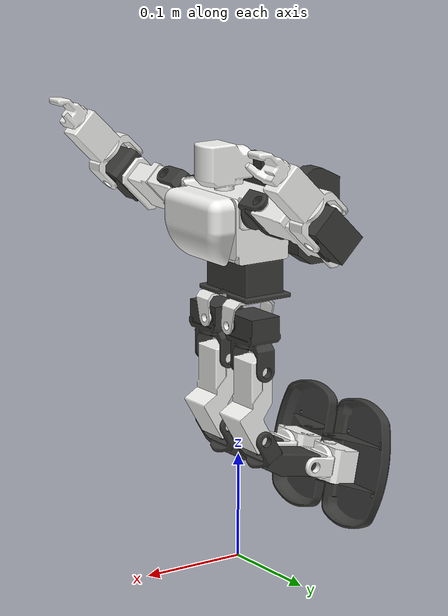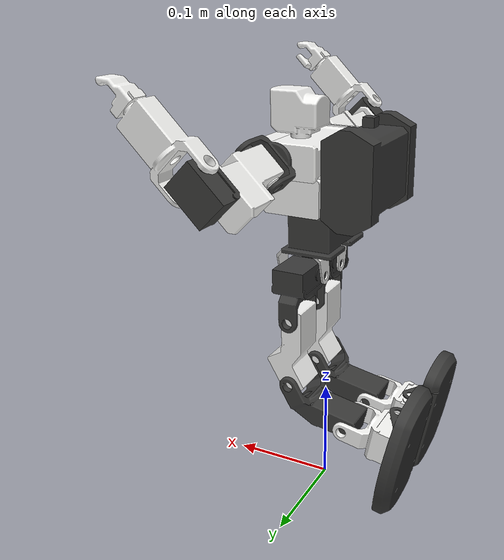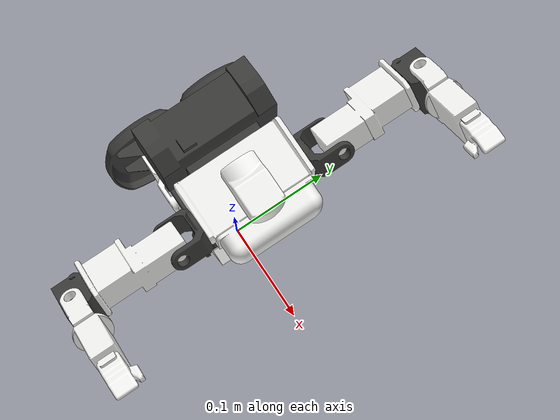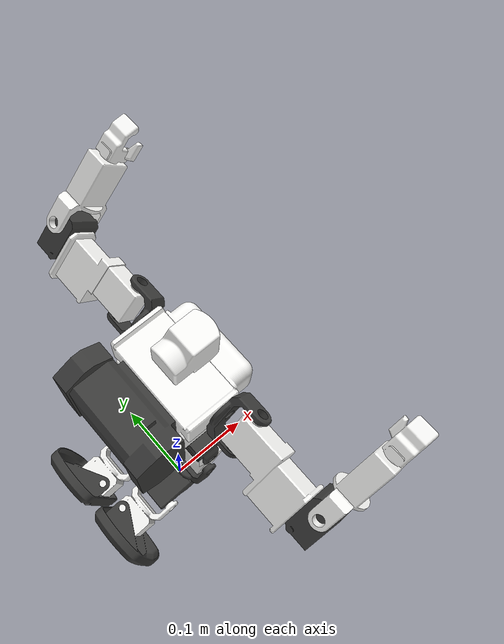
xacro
<?xml version="1.0" ?>
<robot name="KHR3_001" xmlns:xacro="http://www.ros.org/wiki/xacro">

<xacro:include filename="$(find KHR3_001_description)/urdf/materials.xacro" />
<link name="base_link">
  <inertial>
    <origin xyz="-0.0004860989233068227 0.009532810756286876 0.27413898086600197" rpy="0 0 0"/>
    <mass value="0.1340821317466695"/>
    <inertia ixx="6.3e-05" iyy="3.6e-05" izz="6.8e-05" ixy="0.0" iyz="-0.0" ixz="-0.0"/>
  </inertial>
  <visual>
    <origin xyz="0.0 0.0 0.0" rpy="0 0 0"/>
    <geometry>
      <mesh filename="package://KHR3_001_description/meshes/base_link.stl" scale="0.001 0.001 0.001"/>
    </geometry>
    <material name="material_base_link"/>
  </visual>
  <collision>
    <origin xyz="0.0 0.0 0.0" rpy="0 0 0"/>
    <geometry>
      <mesh filename="package://KHR3_001_description/meshes/base_link.stl" scale="0.001 0.001 0.001"/>
    </geometry>
  </collision>
</link>

<link name="c_chest_c_1">
  <inertial>
    <origin xyz="-9.075647373437204e-05 -4.299695896721467e-08 0.04371354326547933" rpy="0 0 0"/>
    <mass value="0.1751250442918047"/>
    <inertia ixx="0.000158" iyy="6.6e-05" izz="0.000176" ixy="0.0" iyz="-0.0" ixz="0.0"/>
  </inertial>
  <visual>
    <origin xyz="-0.010956 -0.009542 -0.29475" rpy="0 0 0"/>
    <geometry>
      <mesh filename="package://KHR3_001_description/meshes/c_chest_c_1.stl" scale="0.001 0.001 0.001"/>
    </geometry>
    <material name="material_c_chest_c_1"/>
  </visual>
  <collision>
    <origin xyz="-0.010956 -0.009542 -0.29475" rpy="0 0 0"/>
    <geometry>
      <mesh filename="package://KHR3_001_description/meshes/c_chest_c_1.stl" scale="0.001 0.001 0.001"/>
    </geometry>
  </collision>
</link>

<link name="c_chest_b_1">
  <inertial>
    <origin xyz="-0.02736256237252084 2.8405186139127125e-06 0.004477857770456339" rpy="0 0 0"/>
    <mass value="0.08659748664099912"/>
    <inertia ixx="0.000118" iyy="5.2e-05" izz="9.8e-05" ixy="0.0" iyz="0.0" ixz="0.0"/>
  </inertial>
  <visual>
    <origin xyz="0.015044 -0.009542 -0.326" rpy="0 0 0"/>
    <geometry>
      <mesh filename="package://KHR3_001_description/meshes/c_chest_b_1.stl" scale="0.001 0.001 0.001"/>
    </geometry>
    <material name="material_c_chest_b_1"/>
  </visual>
  <collision>
    <origin xyz="0.015044 -0.009542 -0.326" rpy="0 0 0"/>
    <geometry>
      <mesh filename="package://KHR3_001_description/meshes/c_chest_b_1.stl" scale="0.001 0.001 0.001"/>
    </geometry>
  </collision>
</link>

<link name="c_chest_a_1">
  <inertial>
    <origin xyz="0.004546802047891985 -4.3088009722691556e-08 -0.002478844882515263" rpy="0 0 0"/>
    <mass value="0.033763923840640864"/>
    <inertia ixx="3.4e-05" iyy="1.9e-05" izz="3.6e-05" ixy="0.0" iyz="-0.0" ixz="-3e-06"/>
  </inertial>
  <visual>
    <origin xyz="-0.036956 -0.009542 -0.326" rpy="0 0 0"/>
    <geometry>
      <mesh filename="package://KHR3_001_description/meshes/c_chest_a_1.stl" scale="0.001 0.001 0.001"/>
    </geometry>
    <material name="material_c_chest_a_1"/>
  </visual>
  <collision>
    <origin xyz="-0.036956 -0.009542 -0.326" rpy="0 0 0"/>
    <geometry>
      <mesh filename="package://KHR3_001_description/meshes/c_chest_a_1.stl" scale="0.001 0.001 0.001"/>
    </geometry>
  </collision>
</link>

<link name="c_head_a_1">
  <inertial>
    <origin xyz="0.0030794307766838433 -4.398312582372388e-08 0.022888843043797014" rpy="0 0 0"/>
    <mass value="0.012778861662402219"/>
    <inertia ixx="2e-06" iyy="4e-06" izz="3e-06" ixy="-0.0" iyz="-0.0" ixz="-0.0"/>
  </inertial>
  <visual>
    <origin xyz="-0.022456 -0.009542 -0.35425" rpy="0 0 0"/>
    <geometry>
      <mesh filename="package://KHR3_001_description/meshes/c_head_a_1.stl" scale="0.001 0.001 0.001"/>
    </geometry>
    <material name="material_c_head_a_1"/>
  </visual>
  <collision>
    <origin xyz="-0.022456 -0.009542 -0.35425" rpy="0 0 0"/>
    <geometry>
      <mesh filename="package://KHR3_001_description/meshes/c_head_a_1.stl" scale="0.001 0.001 0.001"/>
    </geometry>
  </collision>
</link>

<link name="l_shoulder_1">
  <inertial>
    <origin xyz="0.0001694037375137153 0.008747288709026475 3.275157922644212e-14" rpy="0 0 0"/>
    <mass value="0.01212036782921271"/>
    <inertia ixx="1e-06" iyy="4e-06" izz="4e-06" ixy="-0.0" iyz="0.0" ixz="0.0"/>
  </inertial>
  <visual>
    <origin xyz="-0.022456 -0.058442 -0.3425" rpy="0 0 0"/>
    <geometry>
      <mesh filename="package://KHR3_001_description/meshes/l_shoulder_1.stl" scale="0.001 0.001 0.001"/>
    </geometry>
    <material name="material_l_shoulder_1"/>
  </visual>
  <collision>
    <origin xyz="-0.022456 -0.058442 -0.3425" rpy="0 0 0"/>
    <geometry>
      <mesh filename="package://KHR3_001_description/meshes/l_shoulder_1.stl" scale="0.001 0.001 0.001"/>
    </geometry>
  </collision>
</link>

<link name="l_upperarm_1">
  <inertial>
    <origin xyz="-0.0225653184925299 -4.2996961130414846e-08 -0.035645845152499855" rpy="0 0 0"/>
    <mass value="0.09077338253436834"/>
    <inertia ixx="5.4e-05" iyy="6.4e-05" izz="1.8e-05" ixy="0.0" iyz="0.0" ixz="-1e-05"/>
  </inertial>
  <visual>
    <origin xyz="-0.038206 -0.083442 -0.3425" rpy="0 0 0"/>
    <geometry>
      <mesh filename="package://KHR3_001_description/meshes/l_upperarm_1.stl" scale="0.001 0.001 0.001"/>
    </geometry>
    <material name="material_l_upperarm_1"/>
  </visual>
  <collision>
    <origin xyz="-0.038206 -0.083442 -0.3425" rpy="0 0 0"/>
    <geometry>
      <mesh filename="package://KHR3_001_description/meshes/l_upperarm_1.stl" scale="0.001 0.001 0.001"/>
    </geometry>
  </collision>
</link>

<link name="l_elbow_1">
  <inertial>
    <origin xyz="5.745484732988526e-05 -4.299695875731313e-08 -0.012574921301198416" rpy="0 0 0"/>
    <mass value="0.044771268874731554"/>
    <inertia ixx="6e-06" iyy="8e-06" izz="1e-05" ixy="0.0" iyz="-0.0" ixz="0.0"/>
  </inertial>
  <visual>
    <origin xyz="-0.022206 -0.083442 -0.27075" rpy="0 0 0"/>
    <geometry>
      <mesh filename="package://KHR3_001_description/meshes/l_elbow_1.stl" scale="0.001 0.001 0.001"/>
    </geometry>
    <material name="material_l_elbow_1"/>
  </visual>
  <collision>
    <origin xyz="-0.022206 -0.083442 -0.27075" rpy="0 0 0"/>
    <geometry>
      <mesh filename="package://KHR3_001_description/meshes/l_elbow_1.stl" scale="0.001 0.001 0.001"/>
    </geometry>
  </collision>
</link>

<link name="l_lowerarm_1">
  <inertial>
    <origin xyz="0.00017641885408353764 -0.015692428343568668 -0.0456965391176124" rpy="0 0 0"/>
    <mass value="0.029838058097775663"/>
    <inertia ixx="1.8e-05" iyy="1.6e-05" izz="4e-06" ixy="0.0" iyz="-0.0" ixz="0.0"/>
  </inertial>
  <visual>
    <origin xyz="-0.033706 -0.099692 -0.25625" rpy="0 0 0"/>
    <geometry>
      <mesh filename="package://KHR3_001_description/meshes/l_lowerarm_1.stl" scale="0.001 0.001 0.001"/>
    </geometry>
    <material name="material_l_lowerarm_1"/>
  </visual>
  <collision>
    <origin xyz="-0.033706 -0.099692 -0.25625" rpy="0 0 0"/>
    <geometry>
      <mesh filename="package://KHR3_001_description/meshes/l_lowerarm_1.stl" scale="0.001 0.001 0.001"/>
    </geometry>
  </collision>
</link>

<link name="r_shoulder_1">
  <inertial>
    <origin xyz="0.00016940373733527817 -0.00874737470294372 5.2458037913538647e-14" rpy="0 0 0"/>
    <mass value="0.012120367829212731"/>
    <inertia ixx="1e-06" iyy="4e-06" izz="4e-06" ixy="0.0" iyz="0.0" ixz="-0.0"/>
  </inertial>
  <visual>
    <origin xyz="-0.022456 0.039358 -0.3425" rpy="0 0 0"/>
    <geometry>
      <mesh filename="package://KHR3_001_description/meshes/r_shoulder_1.stl" scale="0.001 0.001 0.001"/>
    </geometry>
    <material name="material_r_shoulder_1"/>
  </visual>
  <collision>
    <origin xyz="-0.022456 0.039358 -0.3425" rpy="0 0 0"/>
    <geometry>
      <mesh filename="package://KHR3_001_description/meshes/r_shoulder_1.stl" scale="0.001 0.001 0.001"/>
    </geometry>
  </collision>
</link>

<link name="r_upperarm_1">
  <inertial>
    <origin xyz="-0.022565318492529674 -4.299696106102591e-08 -0.035645845152499855" rpy="0 0 0"/>
    <mass value="0.09077338253436834"/>
    <inertia ixx="5.4e-05" iyy="6.4e-05" izz="1.8e-05" ixy="0.0" iyz="0.0" ixz="-1e-05"/>
  </inertial>
  <visual>
    <origin xyz="-0.038206 0.064358 -0.3425" rpy="0 0 0"/>
    <geometry>
      <mesh filename="package://KHR3_001_description/meshes/r_upperarm_1.stl" scale="0.001 0.001 0.001"/>
    </geometry>
    <material name="material_r_upperarm_1"/>
  </visual>
  <collision>
    <origin xyz="-0.038206 0.064358 -0.3425" rpy="0 0 0"/>
    <geometry>
      <mesh filename="package://KHR3_001_description/meshes/r_upperarm_1.stl" scale="0.001 0.001 0.001"/>
    </geometry>
  </collision>
</link>

<link name="r_elbow_1">
  <inertial>
    <origin xyz="5.7454847330107306e-05 -4.299695864629083e-08 -0.012574921301198416" rpy="0 0 0"/>
    <mass value="0.044771268874731526"/>
    <inertia ixx="6e-06" iyy="8e-06" izz="1e-05" ixy="0.0" iyz="0.0" ixz="0.0"/>
  </inertial>
  <visual>
    <origin xyz="-0.022206 0.064358 -0.27075" rpy="0 0 0"/>
    <geometry>
      <mesh filename="package://KHR3_001_description/meshes/r_elbow_1.stl" scale="0.001 0.001 0.001"/>
    </geometry>
    <material name="material_r_elbow_1"/>
  </visual>
  <collision>
    <origin xyz="-0.022206 0.064358 -0.27075" rpy="0 0 0"/>
    <geometry>
      <mesh filename="package://KHR3_001_description/meshes/r_elbow_1.stl" scale="0.001 0.001 0.001"/>
    </geometry>
  </collision>
</link>

<link name="r_lowerarm_1">
  <inertial>
    <origin xyz="0.00017641885409563907 0.015692342349686986 -0.04569653911759183" rpy="0 0 0"/>
    <mass value="0.029838058097763544"/>
    <inertia ixx="1.8e-05" iyy="1.6e-05" izz="4e-06" ixy="-0.0" iyz="0.0" ixz="0.0"/>
  </inertial>
  <visual>
    <origin xyz="-0.033706 0.080608 -0.25625" rpy="0 0 0"/>
    <geometry>
      <mesh filename="package://KHR3_001_description/meshes/r_lowerarm_1.stl" scale="0.001 0.001 0.001"/>
    </geometry>
    <material name="material_r_lowerarm_1"/>
  </visual>
  <collision>
    <origin xyz="-0.033706 0.080608 -0.25625" rpy="0 0 0"/>
    <geometry>
      <mesh filename="package://KHR3_001_description/meshes/r_lowerarm_1.stl" scale="0.001 0.001 0.001"/>
    </geometry>
  </collision>
</link>

<link name="l_hipjointupper_1">
  <inertial>
    <origin xyz="3.2937645154926254e-05 -0.0011113374509284478 -0.00740019979397627" rpy="0 0 0"/>
    <mass value="0.005702042499396518"/>
    <inertia ixx="1e-06" iyy="2e-06" izz="2e-06" ixy="0.0" iyz="-0.0" ixz="0.0"/>
  </inertial>
  <visual>
    <origin xyz="-0.010956 -0.031242 -0.25575" rpy="0 0 0"/>
    <geometry>
      <mesh filename="package://KHR3_001_description/meshes/l_hipjointupper_1.stl" scale="0.001 0.001 0.001"/>
    </geometry>
    <material name="material_l_hipjointupper_1"/>
  </visual>
  <collision>
    <origin xyz="-0.010956 -0.031242 -0.25575" rpy="0 0 0"/>
    <geometry>
      <mesh filename="package://KHR3_001_description/meshes/l_hipjointupper_1.stl" scale="0.001 0.001 0.001"/>
    </geometry>
  </collision>
</link>

<link name="l_hipjointlower_1">
  <inertial>
    <origin xyz="-0.016250242301438546 0.011463181378778015 -0.006653941986628803" rpy="0 0 0"/>
    <mass value="0.06689532645492413"/>
    <inertia ixx="2e-05" iyy="1.4e-05" izz="1.5e-05" ixy="0.0" iyz="0.0" ixz="-0.0"/>
  </inertial>
  <visual>
    <origin xyz="-0.027656 -0.027242 -0.233" rpy="0 0 0"/>
    <geometry>
      <mesh filename="package://KHR3_001_description/meshes/l_hipjointlower_1.stl" scale="0.001 0.001 0.001"/>
    </geometry>
    <material name="material_l_hipjointlower_1"/>
  </visual>
  <collision>
    <origin xyz="-0.027656 -0.027242 -0.233" rpy="0 0 0"/>
    <geometry>
      <mesh filename="package://KHR3_001_description/meshes/l_hipjointlower_1.stl" scale="0.001 0.001 0.001"/>
    </geometry>
  </collision>
</link>

<link name="l_upperreg_1">
  <inertial>
    <origin xyz="0.0025897804665519324 -0.016500042996958703 -0.03375567398425397" rpy="0 0 0"/>
    <mass value="0.09097466003274822"/>
    <inertia ixx="5.9e-05" iyy="5.6e-05" izz="1.3e-05" ixy="0.0" iyz="-0.0" ixz="4e-06"/>
  </inertial>
  <visual>
    <origin xyz="-0.011406 -0.054742 -0.1935" rpy="0 0 0"/>
    <geometry>
      <mesh filename="package://KHR3_001_description/meshes/l_upperreg_1.stl" scale="0.001 0.001 0.001"/>
    </geometry>
    <material name="material_l_upperreg_1"/>
  </visual>
  <collision>
    <origin xyz="-0.011406 -0.054742 -0.1935" rpy="0 0 0"/>
    <geometry>
      <mesh filename="package://KHR3_001_description/meshes/l_upperreg_1.stl" scale="0.001 0.001 0.001"/>
    </geometry>
  </collision>
</link>

<link name="l_lowerreg_1">
  <inertial>
    <origin xyz="0.004480568094999009 -0.015970110512917204 -0.041821006993800466" rpy="0 0 0"/>
    <mass value="0.060944352048083926"/>
    <inertia ixx="2.9e-05" iyy="2.6e-05" izz="1.1e-05" ixy="0.0" iyz="-0.0" ixz="-5e-06"/>
  </inertial>
  <visual>
    <origin xyz="-0.011406 -0.054742 -0.1285" rpy="0 0 0"/>
    <geometry>
      <mesh filename="package://KHR3_001_description/meshes/l_lowerreg_1.stl" scale="0.001 0.001 0.001"/>
    </geometry>
    <material name="material_l_lowerreg_1"/>
  </visual>
  <collision>
    <origin xyz="-0.011406 -0.054742 -0.1285" rpy="0 0 0"/>
    <geometry>
      <mesh filename="package://KHR3_001_description/meshes/l_lowerreg_1.stl" scale="0.001 0.001 0.001"/>
    </geometry>
  </collision>
</link>

<link name="l_ankle_1">
  <inertial>
    <origin xyz="0.0001886240331466279 -0.016663910693020582 -0.03292964719213732" rpy="0 0 0"/>
    <mass value="0.06757551562559609"/>
    <inertia ixx="2e-05" iyy="1.4e-05" izz="1.6e-05" ixy="0.0" iyz="-0.0" ixz="0.0"/>
  </inertial>
  <visual>
    <origin xyz="-0.008043 -0.055242 -0.063587" rpy="0 0 0"/>
    <geometry>
      <mesh filename="package://KHR3_001_description/meshes/l_ankle_1.stl" scale="0.001 0.001 0.001"/>
    </geometry>
    <material name="material_l_ankle_1"/>
  </visual>
  <collision>
    <origin xyz="-0.008043 -0.055242 -0.063587" rpy="0 0 0"/>
    <geometry>
      <mesh filename="package://KHR3_001_description/meshes/l_ankle_1.stl" scale="0.001 0.001 0.001"/>
    </geometry>
  </collision>
</link>

<link name="l_foot_1">
  <inertial>
    <origin xyz="-0.02070015120765394 0.02389517254474378 -0.021244534057540506" rpy="0 0 0"/>
    <mass value="0.03847104970565029"/>
    <inertia ixx="2.3e-05" iyy="4.8e-05" izz="6.9e-05" ixy="0.0" iyz="0.0" ixz="0.0"/>
  </inertial>
  <visual>
    <origin xyz="-0.027793 -0.027242 -0.024087" rpy="0 0 0"/>
    <geometry>
      <mesh filename="package://KHR3_001_description/meshes/l_foot_1.stl" scale="0.001 0.001 0.001"/>
    </geometry>
    <material name="material_l_foot_1"/>
  </visual>
  <collision>
    <origin xyz="-0.027793 -0.027242 -0.024087" rpy="0 0 0"/>
    <geometry>
      <mesh filename="package://KHR3_001_description/meshes/l_foot_1.stl" scale="0.001 0.001 0.001"/>
    </geometry>
  </collision>
</link>

<link name="r_hipjointupper_1">
  <inertial>
    <origin xyz="3.293764515506503e-05 0.0011112514569246636 -0.007400199793976686" rpy="0 0 0"/>
    <mass value="0.005702042499396552"/>
    <inertia ixx="1e-06" iyy="2e-06" izz="2e-06" ixy="-0.0" iyz="0.0" ixz="0.0"/>
  </inertial>
  <visual>
    <origin xyz="-0.010956 0.012158 -0.25575" rpy="0 0 0"/>
    <geometry>
      <mesh filename="package://KHR3_001_description/meshes/r_hipjointupper_1.stl" scale="0.001 0.001 0.001"/>
    </geometry>
    <material name="material_r_hipjointupper_1"/>
  </visual>
  <collision>
    <origin xyz="-0.010956 0.012158 -0.25575" rpy="0 0 0"/>
    <geometry>
      <mesh filename="package://KHR3_001_description/meshes/r_hipjointupper_1.stl" scale="0.001 0.001 0.001"/>
    </geometry>
  </collision>
</link>

<link name="r_hipjointlower_1">
  <inertial>
    <origin xyz="-0.01625024230143616 -0.011463267372613306 -0.006653941986625472" rpy="0 0 0"/>
    <mass value="0.06689532645492412"/>
    <inertia ixx="2e-05" iyy="1.4e-05" izz="1.5e-05" ixy="0.0" iyz="-0.0" ixz="0.0"/>
  </inertial>
  <visual>
    <origin xyz="-0.027656 0.008158 -0.233" rpy="0 0 0"/>
    <geometry>
      <mesh filename="package://KHR3_001_description/meshes/r_hipjointlower_1.stl" scale="0.001 0.001 0.001"/>
    </geometry>
    <material name="material_r_hipjointlower_1"/>
  </visual>
  <collision>
    <origin xyz="-0.027656 0.008158 -0.233" rpy="0 0 0"/>
    <geometry>
      <mesh filename="package://KHR3_001_description/meshes/r_hipjointlower_1.stl" scale="0.001 0.001 0.001"/>
    </geometry>
  </collision>
</link>

<link name="r_upperreg_1">
  <inertial>
    <origin xyz="0.0025897804665520243 0.016499957003041386 -0.03375567398425397" rpy="0 0 0"/>
    <mass value="0.09097466003274826"/>
    <inertia ixx="5.9e-05" iyy="5.6e-05" izz="1.3e-05" ixy="0.0" iyz="0.0" ixz="4e-06"/>
  </inertial>
  <visual>
    <origin xyz="-0.011406 0.035658 -0.1935" rpy="0 0 0"/>
    <geometry>
      <mesh filename="package://KHR3_001_description/meshes/r_upperreg_1.stl" scale="0.001 0.001 0.001"/>
    </geometry>
    <material name="material_r_upperreg_1"/>
  </visual>
  <collision>
    <origin xyz="-0.011406 0.035658 -0.1935" rpy="0 0 0"/>
    <geometry>
      <mesh filename="package://KHR3_001_description/meshes/r_upperreg_1.stl" scale="0.001 0.001 0.001"/>
    </geometry>
  </collision>
</link>

<link name="r_lowerreg_1">
  <inertial>
    <origin xyz="0.004480568095000106 0.015970024519054358 -0.04182100699379358" rpy="0 0 0"/>
    <mass value="0.06094435204808399"/>
    <inertia ixx="2.9e-05" iyy="2.6e-05" izz="1.1e-05" ixy="-0.0" iyz="0.0" ixz="-5e-06"/>
  </inertial>
  <visual>
    <origin xyz="-0.011406 0.035658 -0.1285" rpy="0 0 0"/>
    <geometry>
      <mesh filename="package://KHR3_001_description/meshes/r_lowerreg_1.stl" scale="0.001 0.001 0.001"/>
    </geometry>
    <material name="material_r_lowerreg_1"/>
  </visual>
  <collision>
    <origin xyz="-0.011406 0.035658 -0.1285" rpy="0 0 0"/>
    <geometry>
      <mesh filename="package://KHR3_001_description/meshes/r_lowerreg_1.stl" scale="0.001 0.001 0.001"/>
    </geometry>
  </collision>
</link>

<link name="r_ankle_1">
  <inertial>
    <origin xyz="0.00018862403314766178 0.01666382469926104 -0.0329296471921381" rpy="0 0 0"/>
    <mass value="0.06757551562559605"/>
    <inertia ixx="2e-05" iyy="1.4e-05" izz="1.6e-05" ixy="-0.0" iyz="0.0" ixz="0.0"/>
  </inertial>
  <visual>
    <origin xyz="-0.008043 0.036158 -0.063587" rpy="0 0 0"/>
    <geometry>
      <mesh filename="package://KHR3_001_description/meshes/r_ankle_1.stl" scale="0.001 0.001 0.001"/>
    </geometry>
    <material name="material_r_ankle_1"/>
  </visual>
  <collision>
    <origin xyz="-0.008043 0.036158 -0.063587" rpy="0 0 0"/>
    <geometry>
      <mesh filename="package://KHR3_001_description/meshes/r_ankle_1.stl" scale="0.001 0.001 0.001"/>
    </geometry>
  </collision>
</link>

<link name="r_foot_1">
  <inertial>
    <origin xyz="-0.020700151207551462 -0.023895258538627492 -0.021244534057540482" rpy="0 0 0"/>
    <mass value="0.03847104970565036"/>
    <inertia ixx="2.3e-05" iyy="4.8e-05" izz="6.9e-05" ixy="-0.0" iyz="-0.0" ixz="-0.0"/>
  </inertial>
  <visual>
    <origin xyz="-0.027793 0.008158 -0.024087" rpy="0 0 0"/>
    <geometry>
      <mesh filename="package://KHR3_001_description/meshes/r_foot_1.stl" scale="0.001 0.001 0.001"/>
    </geometry>
    <material name="material_r_foot_1"/>
  </visual>
  <collision>
    <origin xyz="-0.027793 0.008158 -0.024087" rpy="0 0 0"/>
    <geometry>
      <mesh filename="package://KHR3_001_description/meshes/r_foot_1.stl" scale="0.001 0.001 0.001"/>
    </geometry>
  </collision>
</link>

<joint name="continuous_joint_01" type="continuous">
  <origin xyz="0.010956 0.009542 0.29475" rpy="0.0 0.0 0.0"/>
  <parent link="base_link"/>
  <child link="c_chest_c_1"/>
  <axis xyz="0.0 -0.0 1.0"/>
  <limit effort="100.0" velocity="100.0"/>
</joint>

<joint name="fixed_joint_01" type="fixed">
  <origin xyz="-0.026 0.0 0.03125" rpy="0.0 0.0 0.0"/>
  <parent link="c_chest_c_1"/>
  <child link="c_chest_b_1"/>
</joint>

<joint name="fixed_joint_02" type="fixed">
  <origin xyz="0.026 0.0 0.03125" rpy="0.0 0.0 0.0"/>
  <parent link="c_chest_c_1"/>
  <child link="c_chest_a_1"/>
</joint>

<joint name="continuous_joint_02" type="continuous">
  <origin xyz="0.0115 0.0 0.0595" rpy="0.0 0.0 0.0"/>
  <parent link="c_chest_c_1"/>
  <child link="c_head_a_1"/>
  <axis xyz="0.0 -0.0 1.0"/>
  <limit effort="100.0" velocity="100.0"/>
</joint>

<joint name="continuous_joint_03" type="continuous">
  <origin xyz="0.0115 0.0489 0.04775" rpy="0.0 -0.7853981633974483 0.0"/>
  <parent link="c_chest_c_1"/>
  <child link="l_shoulder_1"/>
  <axis xyz="-0.0 1.0 0.0"/>
  <limit effort="100.0" velocity="100.0"/>
</joint>

<joint name="continuous_joint_04" type="continuous">
  <origin xyz="0.01575 0.025 0.0" rpy="1.5707963267948966 0.0 0.0"/>
  <parent link="l_shoulder_1"/>
  <child link="l_upperarm_1"/>
  <axis xyz="1.0 -0.0 0.0"/>
  <limit effort="100.0" velocity="100.0"/>
</joint>

<joint name="continuous_joint_05" type="continuous">
  <origin xyz="-0.016 0.0 -0.07175" rpy="0.0 0.0 0.0"/>
  <parent link="l_upperarm_1"/>
  <child link="l_elbow_1"/>
  <axis xyz="-0.0 -0.0 1.0"/>
  <limit effort="100.0" velocity="100.0"/>
</joint>

<joint name="continuous_joint_06" type="continuous">
  <origin xyz="0.0115 0.01625 -0.0145" rpy="0.0 -1.5707963267948966 0.0"/>
  <parent link="l_elbow_1"/>
  <child link="l_lowerarm_1"/>
  <axis xyz="-0.0 1.0 0.0"/>
  <limit effort="100.0" velocity="100.0"/>
</joint>

<joint name="continuous_joint_07" type="continuous">
  <origin xyz="0.0115 -0.0489 0.04775" rpy="0.0 -0.7853981633974483 0.0"/>
  <parent link="c_chest_c_1"/>
  <child link="r_shoulder_1"/>
  <axis xyz="0.0 -1.0 -0.0"/>
  <limit effort="100.0" velocity="100.0"/>
</joint>

<joint name="continuous_joint_08" type="continuous">
  <origin xyz="0.01575 -0.025 0.0" rpy="-1.5707963267948966 0.0 0.0"/>
  <parent link="r_shoulder_1"/>
  <child link="r_upperarm_1"/>
  <axis xyz="1.0 0.0 0.0"/>
  <limit effort="100.0" velocity="100.0"/>
</joint>

<joint name="continuous_joint_09" type="continuous">
  <origin xyz="-0.016 0.0 -0.07175" rpy="0.0 0.0 0.0"/>
  <parent link="r_upperarm_1"/>
  <child link="r_elbow_1"/>
  <axis xyz="-0.0 0.0 1.0"/>
  <limit effort="100.0" velocity="100.0"/>
</joint>

<joint name="continuous_joint_10" type="continuous">
  <origin xyz="0.0115 -0.01625 -0.0145" rpy="0.0 -1.5707963267948966 0.0"/>
  <parent link="r_elbow_1"/>
  <child link="r_lowerarm_1"/>
  <axis xyz="-0.0 1.0 -0.0"/>
  <limit effort="100.0" velocity="100.0"/>
</joint>

<joint name="continuous_joint_11" type="continuous">
  <origin xyz="0.010956 0.031242 0.25575" rpy="0.0 0.0 0.0"/>
  <parent link="base_link"/>
  <child link="l_hipjointupper_1"/>
  <axis xyz="-0.0 0.0 -1.0"/>
  <limit effort="100.0" velocity="100.0"/>
</joint>

<joint name="continuous_joint_12" type="continuous">
  <origin xyz="0.0167 -0.004 -0.02275" rpy="0.0 0.0 0.0"/>
  <parent link="l_hipjointupper_1"/>
  <child link="l_hipjointlower_1"/>
  <axis xyz="1.0 0.0 -0.0"/>
  <limit effort="100.0" velocity="100.0"/>
</joint>

<joint name="continuous_joint_13" type="continuous">
  <origin xyz="-0.01625 0.0275 -0.0395" rpy="0.0 0.0 0.0"/>
  <parent link="l_hipjointlower_1"/>
  <child link="l_upperreg_1"/>
  <axis xyz="-0.0 1.0 0.0"/>
  <limit effort="100.0" velocity="100.0"/>
</joint>

<joint name="continuous_joint_14" type="continuous">
  <origin xyz="0.0 0.0 -0.065" rpy="0.0 0.9651670763528647 0.0"/>
  <parent link="l_upperreg_1"/>
  <child link="l_lowerreg_1"/>
  <axis xyz="-0.0 1.0 0.0"/>
  <limit effort="100.0" velocity="100.0"/>
</joint>

<joint name="continuous_joint_15" type="continuous">
  <origin xyz="-0.003363 0.0005 -0.064913" rpy="0.0 0.41713369122664473 0.0"/>
  <parent link="l_lowerreg_1"/>
  <child link="l_ankle_1"/>
  <axis xyz="0.0 1.0 0.0"/>
  <limit effort="100.0" velocity="100.0"/>
</joint>

<joint name="continuous_joint_16" type="continuous">
  <origin xyz="0.01975 -0.028 -0.0395" rpy="0.0 0.0 0.0"/>
  <parent link="l_ankle_1"/>
  <child link="l_foot_1"/>
  <axis xyz="1.0 -0.0 -0.0"/>
  <limit effort="100.0" velocity="100.0"/>
</joint>

<joint name="continuous_joint_17" type="continuous">
  <origin xyz="0.010956 -0.012158 0.25575" rpy="0.0 0.0 0.0"/>
  <parent link="base_link"/>
  <child link="r_hipjointupper_1"/>
  <axis xyz="-0.0 0.0 -1.0"/>
  <limit effort="100.0" velocity="100.0"/>
</joint>

<joint name="continuous_joint_18" type="continuous">
  <origin xyz="0.0167 0.004 -0.02275" rpy="0.0 0.0 0.0"/>
  <parent link="r_hipjointupper_1"/>
  <child link="r_hipjointlower_1"/>
  <axis xyz="1.0 0.0 0.0"/>
  <limit effort="100.0" velocity="100.0"/>
</joint>

<joint name="continuous_joint_19" type="continuous">
  <origin xyz="-0.01625 -0.0275 -0.0395" rpy="0.0 0.0 0.0"/>
  <parent link="r_hipjointlower_1"/>
  <child link="r_upperreg_1"/>
  <axis xyz="0.0 -1.0 0.0"/>
  <limit effort="100.0" velocity="100.0"/>
</joint>

<joint name="continuous_joint_20" type="continuous">
  <origin xyz="0.0 0.0 -0.065" rpy="0.0 0.9651670763528647 0.0"/>
  <parent link="r_upperreg_1"/>
  <child link="r_lowerreg_1"/>
  <axis xyz="-0.0 1.0 -0.0"/>
  <limit effort="100.0" velocity="100.0"/>
</joint>

<joint name="continuous_joint_21" type="continuous">
  <origin xyz="-0.003363 -0.0005 -0.064913" rpy="0.0 0.41713369122664473 0.0"/>
  <parent link="r_lowerreg_1"/>
  <child link="r_ankle_1"/>
  <axis xyz="0.0 1.0 -0.0"/>
  <limit effort="100.0" velocity="100.0"/>
</joint>

<joint name="continuous_joint_22" type="continuous">
  <origin xyz="0.01975 0.028 -0.0395" rpy="0.0 0.0 0.0"/>
  <parent link="r_ankle_1"/>
  <child link="r_foot_1"/>
  <axis xyz="1.0 0.0 0.0"/>
  <limit effort="100.0" velocity="100.0"/>
</joint>

</robot>

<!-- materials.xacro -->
<robot name="KHR3_001" xmlns:xacro="http://www.ros.org/wiki/xacro" >

<material name="material_base_link">
  <color rgba="0.227451 0.227451 0.223529 1.000000"/>
</material>

<material name="material_c_chest_a_1">
  <color rgba="0.960784 0.960784 0.952941 1.000000"/>
</material>

<material name="material_c_chest_b_1">
  <color rgba="0.227451 0.227451 0.223529 1.000000"/>
</material>

<material name="material_c_chest_c_1">
  <color rgba="0.960784 0.960784 0.952941 1.000000"/>
</material>

<material name="material_c_head_a_1">
  <color rgba="0.960784 0.960784 0.952941 1.000000"/>
</material>

<material name="material_l_ankle_1">
  <color rgba="0.960784 0.960784 0.952941 1.000000"/>
</material>

<material name="material_l_elbow_1">
  <color rgba="0.227451 0.227451 0.223529 1.000000"/>
</material>

<material name="material_l_foot_1">
  <color rgba="0.227451 0.227451 0.223529 1.000000"/>
</material>

<material name="material_l_hipjointlower_1">
  <color rgba="0.227451 0.227451 0.223529 1.000000"/>
</material>

<material name="material_l_hipjointupper_1">
  <color rgba="0.960784 0.960784 0.952941 1.000000"/>
</material>

<material name="material_l_lowerarm_1">
  <color rgba="0.960784 0.960784 0.952941 1.000000"/>
</material>

<material name="material_l_lowerreg_1">
  <color rgba="0.227451 0.227451 0.223529 1.000000"/>
</material>

<material name="material_l_shoulder_1">
  <color rgba="0.227451 0.227451 0.223529 1.000000"/>
</material>

<material name="material_l_upperarm_1">
  <color rgba="0.960784 0.960784 0.952941 1.000000"/>
</material>

<material name="material_l_upperreg_1">
  <color rgba="0.960784 0.960784 0.952941 1.000000"/>
</material>

<material name="material_r_ankle_1">
  <color rgba="0.960784 0.960784 0.952941 1.000000"/>
</material>

<material name="material_r_elbow_1">
  <color rgba="0.227451 0.227451 0.223529 1.000000"/>
</material>

<material name="material_r_foot_1">
  <color rgba="0.227451 0.227451 0.223529 1.000000"/>
</material>

<material name="material_r_hipjointlower_1">
  <color rgba="0.227451 0.227451 0.223529 1.000000"/>
</material>

<material name="material_r_hipjointupper_1">
  <color rgba="0.960784 0.960784 0.952941 1.000000"/>
</material>

<material name="material_r_lowerarm_1">
  <color rgba="0.960784 0.960784 0.952941 1.000000"/>
</material>

<material name="material_r_lowerreg_1">
  <color rgba="0.227451 0.227451 0.223529 1.000000"/>
</material>

<material name="material_r_shoulder_1">
  <color rgba="0.227451 0.227451 0.223529 1.000000"/>
</material>

<material name="material_r_upperarm_1">
  <color rgba="0.960784 0.960784 0.952941 1.000000"/>
</material>

<material name="material_r_upperreg_1">
  <color rgba="0.960784 0.960784 0.952941 1.000000"/>
</material>

</robot>
